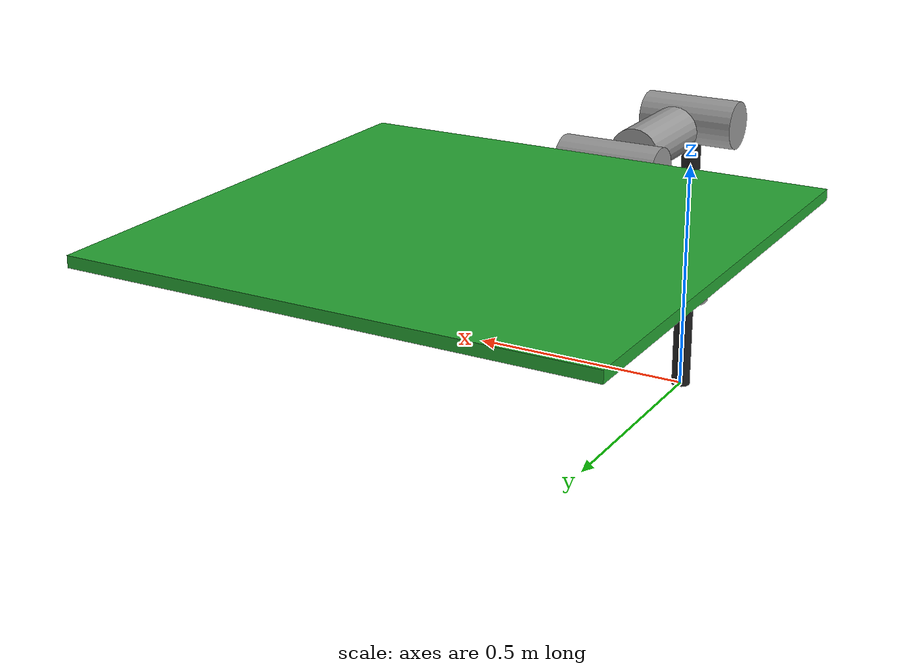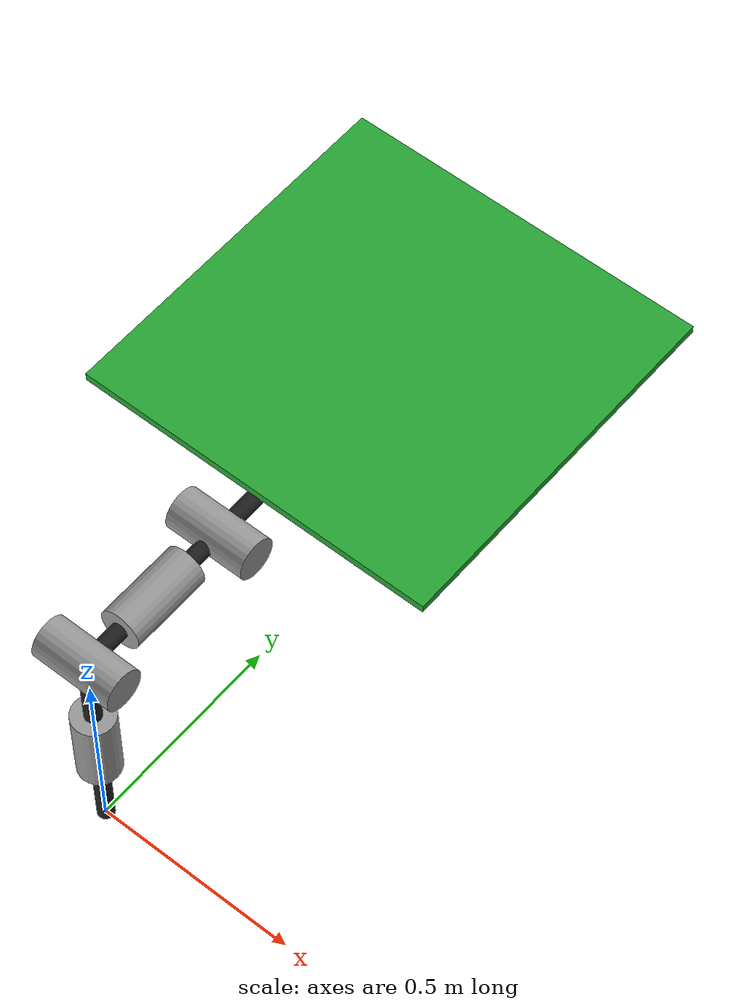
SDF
<sdf version='1.7'>
  <model name='sevenbot'>
    <joint name='attach-motor1' type='fixed'>
      <pose relative_to='__model__'>0 0 0 0 -0 0</pose>
      <parent>world</parent>
      <child>motor1</child>
    </joint>
    <link name='motor1'>
      <pose relative_to='attach-motor1'>0 0 0 0 -0 0</pose>
      <inertial>
        <pose>0 0 0.3 0 -0 0</pose>
        <mass>2</mass>
        <inertia>
          <ixx>0.007917</ixx>
          <ixy>0</ixy>
          <ixz>0</ixz>
          <iyy>0.007917</iyy>
          <iyz>0</iyz>
          <izz>0.0025</izz>
        </inertia>
      </inertial>
      <visual name='motor1_visual'>
        <pose>0 0 0.3 0 -0 0</pose>
        <geometry>
          <cylinder>
            <length>0.2</length>
            <radius>0.05</radius>
          </cylinder>
        </geometry>
        <material>
          <script>
            <name>Gazebo/Gray</name>
            <uri>file://media/materials/scripts/gazebo.material</uri>
          </script>
        </material>
      </visual>
      <gravity>1</gravity>
      <velocity_decay/>
    </link>
    <joint name='attach-mount1' type='fixed'>
      <pose relative_to='__model__'>0 0 0 0 -0 0</pose>
      <parent>world</parent>
      <child>mount1</child>
    </joint>
    <link name='mount1'>
      <pose relative_to='attach-mount1'>0 0 0 0 -0 0</pose>
      <inertial>
        <pose>0 0 0.1 0 -0 0</pose>
        <mass>0.2</mass>
        <inertia>
          <ixx>0.000687</ixx>
          <ixy>0</ixy>
          <ixz>0</ixz>
          <iyy>0.000687</iyy>
          <iyz>0</iyz>
          <izz>4e-05</izz>
        </inertia>
      </inertial>
      <visual name='mount1_visual'>
        <pose>0 0 0.1 0 -0 0</pose>
        <geometry>
          <cylinder>
            <length>0.2</length>
            <radius>0.02</radius>
          </cylinder>
        </geometry>
        <material>
          <script>
            <name>Gazebo/Black</name>
            <uri>file://media/materials/scripts/gazebo.material</uri>
          </script>
        </material>
      </visual>
      <gravity>1</gravity>
      <velocity_decay/>
    </link>
    <joint name='theta1' type='revolute'>
      <pose relative_to='__model__'>0 0 0.6 0 -0 0</pose>
      <parent>world</parent>
      <child>link1</child>
      <axis>
        <xyz>0 0 1</xyz>
        <limit>
          <lower>-1e+16</lower>
          <upper>1e+16</upper>
        </limit>
        <dynamics>
          <damping>0.5</damping>
          <friction>0</friction>
          <spring_reference>0</spring_reference>
          <spring_stiffness>0</spring_stiffness>
        </dynamics>
      </axis>
    </joint>
    <link name='link1'>
      <pose relative_to='theta1'>0 0 0 0 -0 0</pose>
      <inertial>
        <pose>0 0 -0.009091 0 -0 0</pose>
        <mass>2.2</mass>
        <inertia>
          <ixx>0.00500518</ixx>
          <ixy>0</ixy>
          <ixz>-3.31696e-19</ixz>
          <iyy>0.0104222</iyy>
          <iyz>0</iyz>
          <izz>0.007957</izz>
        </inertia>
      </inertial>
      <visual name='link1_fixed_joint_lump__motor2_visual'>
        <pose>0 0 0 0 1.5708 0</pose>
        <geometry>
          <cylinder>
            <length>0.2</length>
            <radius>0.05</radius>
          </cylinder>
        </geometry>
        <material>
          <script>
            <name>Gazebo/Gray</name>
            <uri>file://media/materials/scripts/gazebo.material</uri>
          </script>
        </material>
      </visual>
      <visual name='link1_fixed_joint_lump__mount2_visual_1'>
        <pose>0 0 -0.1 0 -0 0</pose>
        <geometry>
          <cylinder>
            <length>0.2</length>
            <radius>0.02</radius>
          </cylinder>
        </geometry>
        <material>
          <script>
            <name>Gazebo/Black</name>
            <uri>file://media/materials/scripts/gazebo.material</uri>
          </script>
        </material>
      </visual>
      <velocity_decay/>
      <gravity>1</gravity>
      <velocity_decay/>
    </link>
    <joint name='theta2' type='revolute'>
      <pose relative_to='link1'>0 0 0 0 -0 0</pose>
      <parent>link1</parent>
      <child>link2</child>
      <axis>
        <xyz>1 0 0</xyz>
        <limit>
          <lower>-1e+16</lower>
          <upper>1e+16</upper>
        </limit>
        <dynamics>
          <damping>1</damping>
          <friction>0</friction>
          <spring_reference>0</spring_reference>
          <spring_stiffness>0</spring_stiffness>
        </dynamics>
      </axis>
    </joint>
    <link name='link2'>
      <pose relative_to='theta2'>0 0 0 0 -0 0</pose>
      <inertial>
        <pose>0 0.190909 0 0 -0 0</pose>
        <mass>2.2</mass>
        <inertia>
          <ixx>0.0104222</ixx>
          <ixy>0</ixy>
          <ixz>0</ixz>
          <iyy>0.00254</iyy>
          <iyz>-2.22743e-08</iyz>
          <izz>0.0104222</izz>
        </inertia>
      </inertial>
      <visual name='link2_fixed_joint_lump__motor3_visual'>
        <pose>0 0.2 0 1.5708 -0 0</pose>
        <geometry>
          <cylinder>
            <length>0.2</length>
            <radius>0.05</radius>
          </cylinder>
        </geometry>
        <material>
          <script>
            <name>Gazebo/Gray</name>
            <uri>file://media/materials/scripts/gazebo.material</uri>
          </script>
        </material>
      </visual>
      <visual name='link2_fixed_joint_lump__mount3_visual_1'>
        <pose>0 0.1 0 1.5708 -0 0</pose>
        <geometry>
          <cylinder>
            <length>0.2</length>
            <radius>0.02</radius>
          </cylinder>
        </geometry>
        <material>
          <script>
            <name>Gazebo/Black</name>
            <uri>file://media/materials/scripts/gazebo.material</uri>
          </script>
        </material>
      </visual>
      <velocity_decay/>
      <gravity>1</gravity>
      <velocity_decay/>
    </link>
    <joint name='theta3' type='revolute'>
      <pose relative_to='link2'>0 0.4 0 0 -0 0</pose>
      <parent>link2</parent>
      <child>link3</child>
      <axis>
        <xyz>0 1 0</xyz>
        <limit>
          <lower>-1e+16</lower>
          <upper>1e+16</upper>
        </limit>
        <dynamics>
          <damping>0.05</damping>
          <friction>0</friction>
          <spring_reference>0</spring_reference>
          <spring_stiffness>0</spring_stiffness>
        </dynamics>
      </axis>
    </joint>
    <link name='link3'>
      <pose relative_to='theta3'>0 0 0 0 -0 0</pose>
      <inertial>
        <pose>0 -0.009091 0 0 -0 0</pose>
        <mass>2.2</mass>
        <inertia>
          <ixx>0.00500518</ixx>
          <ixy>0</ixy>
          <ixz>-3.31696e-19</ixz>
          <iyy>0.007957</iyy>
          <iyz>-2.37656e-09</iyz>
          <izz>0.0104222</izz>
        </inertia>
      </inertial>
      <visual name='link3_fixed_joint_lump__motor4_visual'>
        <pose>0 0 0 0 1.5708 0</pose>
        <geometry>
          <cylinder>
            <length>0.2</length>
            <radius>0.05</radius>
          </cylinder>
        </geometry>
        <material>
          <script>
            <name>Gazebo/Gray</name>
            <uri>file://media/materials/scripts/gazebo.material</uri>
          </script>
        </material>
      </visual>
      <visual name='link3_fixed_joint_lump__mount4_visual_1'>
        <pose>0 -0.1 0 1.5708 -0 0</pose>
        <geometry>
          <cylinder>
            <length>0.2</length>
            <radius>0.02</radius>
          </cylinder>
        </geometry>
        <material>
          <script>
            <name>Gazebo/Black</name>
            <uri>file://media/materials/scripts/gazebo.material</uri>
          </script>
        </material>
      </visual>
      <velocity_decay/>
      <gravity>1</gravity>
      <velocity_decay/>
    </link>
    <joint name='theta4' type='revolute'>
      <pose relative_to='link3'>0 0 0 0 -0 0</pose>
      <parent>link3</parent>
      <child>link4</child>
      <axis>
        <xyz>1 0 0</xyz>
        <limit>
          <lower>-1e+16</lower>
          <upper>1e+16</upper>
        </limit>
        <dynamics>
          <damping>0.1</damping>
          <friction>0</friction>
          <spring_reference>0</spring_reference>
          <spring_stiffness>0</spring_stiffness>
        </dynamics>
      </axis>
    </joint>
    <link name='link4'>
      <pose relative_to='theta4'>0 0 0 0 -0 0</pose>
      <inertial>
        <pose>0 0.183333 0 0 -0 0</pose>
        <mass>1.2</mass>
        <inertia>
          <ixx>0.00334367</ixx>
          <ixy>0</ixy>
          <ixz>0</ixz>
          <iyy>0.000353</iyy>
          <iyz>-4.86332e-09</iyz>
          <izz>0.00334367</izz>
        </inertia>
      </inertial>
      <visual name='link4_fixed_joint_lump__motor5_visual'>
        <pose>0 0.2 0 1.5708 -0 0</pose>
        <geometry>
          <cylinder>
            <length>0.1</length>
            <radius>0.025</radius>
          </cylinder>
        </geometry>
        <material>
          <script>
            <name>Gazebo/Gray</name>
            <uri>file://media/materials/scripts/gazebo.material</uri>
          </script>
        </material>
      </visual>
      <visual name='link4_fixed_joint_lump__mount5_visual_1'>
        <pose>0 0.1 0 1.5708 -0 0</pose>
        <geometry>
          <cylinder>
            <length>0.2</length>
            <radius>0.02</radius>
          </cylinder>
        </geometry>
        <material>
          <script>
            <name>Gazebo/Black</name>
            <uri>file://media/materials/scripts/gazebo.material</uri>
          </script>
        </material>
      </visual>
      <velocity_decay/>
      <gravity>1</gravity>
      <velocity_decay/>
    </link>
    <joint name='theta5' type='revolute'>
      <pose relative_to='link4'>0 0.4 0 0 -0 0</pose>
      <parent>link4</parent>
      <child>link5</child>
      <axis>
        <xyz>0 1 0</xyz>
        <limit>
          <lower>-1e+16</lower>
          <upper>1e+16</upper>
        </limit>
        <dynamics>
          <damping>0.02</damping>
          <friction>0</friction>
          <spring_reference>0</spring_reference>
          <spring_stiffness>0</spring_stiffness>
        </dynamics>
      </axis>
    </joint>
    <link name='link5'>
      <pose relative_to='theta5'>0 0 0 0 -0 0</pose>
      <inertial>
        <pose>0 -0.009091 0 0 -0 0</pose>
        <mass>1.1</mass>
        <inertia>
          <ixx>0.00223509</ixx>
          <ixy>0</ixy>
          <ixz>0</ixz>
          <iyy>0.000995</iyy>
          <iyz>-1.21583e-09</iyz>
          <izz>0.00155809</izz>
        </inertia>
      </inertial>
      <visual name='link5_fixed_joint_lump__motor6_visual'>
        <pose>0 0 0 0 -0 0</pose>
        <geometry>
          <cylinder>
            <length>0.1</length>
            <radius>0.025</radius>
          </cylinder>
        </geometry>
        <material>
          <script>
            <name>Gazebo/Gray</name>
            <uri>file://media/materials/scripts/gazebo.material</uri>
          </script>
        </material>
      </visual>
      <visual name='link5_fixed_joint_lump__mount6_visual_1'>
        <pose>0 -0.1 0 1.5708 -0 0</pose>
        <geometry>
          <cylinder>
            <length>0.2</length>
            <radius>0.01</radius>
          </cylinder>
        </geometry>
        <material>
          <script>
            <name>Gazebo/Black</name>
            <uri>file://media/materials/scripts/gazebo.material</uri>
          </script>
        </material>
      </visual>
      <velocity_decay/>
      <gravity>1</gravity>
      <velocity_decay/>
    </link>
    <joint name='theta6' type='revolute'>
      <pose relative_to='link5'>0 0 0 0 -0 0</pose>
      <parent>link5</parent>
      <child>link6</child>
      <axis>
        <xyz>0 0 1</xyz>
        <limit>
          <lower>-1e+16</lower>
          <upper>1e+16</upper>
        </limit>
        <dynamics>
          <damping>0.02</damping>
          <friction>0</friction>
          <spring_reference>0</spring_reference>
          <spring_stiffness>0</spring_stiffness>
        </dynamics>
      </axis>
    </joint>
    <link name='link6'>
      <pose relative_to='theta6'>0 0 0 0 -0 0</pose>
      <inertial>
        <pose>0 0 0 0 -0 0</pose>
        <mass>1</mass>
        <inertia>
          <ixx>0.000313</ixx>
          <ixy>0</ixy>
          <ixz>-4.14543e-20</ixz>
          <iyy>0.00099</iyy>
          <iyz>0</iyz>
          <izz>0.00099</izz>
        </inertia>
      </inertial>
      <visual name='link6_fixed_joint_lump__motor7_visual'>
        <pose>0 0 0 0 1.5708 0</pose>
        <geometry>
          <cylinder>
            <length>0.1</length>
            <radius>0.025</radius>
          </cylinder>
        </geometry>
        <material>
          <script>
            <name>Gazebo/Gray</name>
            <uri>file://media/materials/scripts/gazebo.material</uri>
          </script>
        </material>
      </visual>
      <gravity>1</gravity>
      <velocity_decay/>
    </link>
    <joint name='theta7' type='revolute'>
      <pose relative_to='link6'>0 0 0 0 -0 0</pose>
      <parent>link6</parent>
      <child>link7</child>
      <axis>
        <xyz>1 0 0</xyz>
        <limit>
          <lower>-1e+16</lower>
          <upper>1e+16</upper>
        </limit>
        <dynamics>
          <damping>0.02</damping>
          <friction>0</friction>
          <spring_reference>0</spring_reference>
          <spring_stiffness>0</spring_stiffness>
        </dynamics>
      </axis>
    </joint>
    <link name='link7'>
      <pose relative_to='theta7'>0 0 0 0 -0 0</pose>
      <inertial>
        <pose>-0 0.146136 0 0 -0 0</pose>
        <mass>2.2</mass>
        <inertia>
          <ixx>0.00235816</ixx>
          <ixy>-6.33749e-20</ixy>
          <ixz>-2.44929e-21</ixz>
          <iyy>0.001966</iyy>
          <iyz>-2.93856e-10</iyz>
          <izz>0.00264816</izz>
        </inertia>
      </inertial>
      <collision name='link7_fixed_joint_lump__cube_collision'>
        <pose>0 0.15 0 1.5708 -0 -3.14159</pose>
        <geometry>
          <box>
            <size>0.9 0.1 0.9</size>
          </box>
        </geometry>
        <surface>
          <bounce>
            <restitution_coefficient>1</restitution_coefficient>
            <threshold>0.01</threshold>
          </bounce>
          <contact>
            <ode>
              <max_vel>10</max_vel>
            </ode>
          </contact>
          <friction>
            <ode/>
          </friction>
        </surface>
      </collision>
      <visual name='link7_fixed_joint_lump__handbase_visual'>
        <pose>0 0.05 0 1.5708 -0 0</pose>
        <geometry>
          <cylinder>
            <length>0.1</length>
            <radius>0.01</radius>
          </cylinder>
        </geometry>
        <material>
          <script>
            <name>Gazebo/Black</name>
            <uri>file://media/materials/scripts/gazebo.material</uri>
          </script>
        </material>
      </visual>
      <visual name='link7_fixed_joint_lump__leftfinger_visual_1'>
        <pose>-0.05 0.14 0 1.5708 -0 0</pose>
        <geometry>
          <cylinder>
            <length>0.08</length>
            <radius>0.01</radius>
          </cylinder>
        </geometry>
        <material>
          <script>
            <name>Gazebo/Black</name>
            <uri>file://media/materials/scripts/gazebo.material</uri>
          </script>
        </material>
      </visual>
      <visual name='link7_fixed_joint_lump__palm_visual_2'>
        <pose>0 0.1 0 0 1.5708 0</pose>
        <geometry>
          <cylinder>
            <length>0.1</length>
            <radius>0.01</radius>
          </cylinder>
        </geometry>
        <material>
          <script>
            <name>Gazebo/Black</name>
            <uri>file://media/materials/scripts/gazebo.material</uri>
          </script>
        </material>
      </visual>
      <visual name='link7_fixed_joint_lump__rightfinger_visual_3'>
        <pose>0.05 0.14 0 1.5708 -0 0</pose>
        <geometry>
          <cylinder>
            <length>0.08</length>
            <radius>0.01</radius>
          </cylinder>
        </geometry>
        <material>
          <script>
            <name>Gazebo/Black</name>
            <uri>file://media/materials/scripts/gazebo.material</uri>
          </script>
        </material>
      </visual>
      <visual name='link7_fixed_joint_lump__cube-back_visual_4'>
        <pose>0 0.11 0 1.5708 -0 -3.14159</pose>
        <geometry>
          <box>
            <size>0.09 0.09 0.0202</size>
          </box>
        </geometry>
        <material>
          <script>
            <name>Gazebo/White</name>
            <uri>file://media/materials/scripts/gazebo.material</uri>
          </script>
        </material>
      </visual>
      <visual name='link7_fixed_joint_lump__cube-down_visual_5'>
        <pose>0 0.15 -0.04 1.5708 -0 -3.14159</pose>
        <geometry>
          <box>
            <size>0.09 0.0202 0.09</size>
          </box>
        </geometry>
        <material>
          <script>
            <name>Gazebo/Yellow</name>
            <uri>file://media/materials/scripts/gazebo.material</uri>
          </script>
        </material>
      </visual>
      <visual name='link7_fixed_joint_lump__cube-front_visual_6'>
        <pose>-0 0.19 -0 1.5708 -0 -3.14159</pose>
        <geometry>
          <box>
            <size>0.09 0.09 0.0202</size>
          </box>
        </geometry>
        <material>
          <script>
            <name>Gazebo/Blue</name>
            <uri>file://media/materials/scripts/gazebo.material</uri>
          </script>
        </material>
      </visual>
      <visual name='link7_fixed_joint_lump__cube-left_visual_7'>
        <pose>-0.04 0.15 0 1.5708 -0 -3.14159</pose>
        <geometry>
          <box>
            <size>0.0202 0.09 0.09</size>
          </box>
        </geometry>
        <material>
          <script>
            <name>Gazebo/Red</name>
            <uri>file://media/materials/scripts/gazebo.material</uri>
          </script>
        </material>
      </visual>
      <visual name='link7_fixed_joint_lump__cube-right_visual_8'>
        <pose>0.04 0.15 0 1.5708 -0 -3.14159</pose>
        <geometry>
          <box>
            <size>0.0202 0.09 0.09</size>
          </box>
        </geometry>
        <material>
          <script>
            <name>Gazebo/Orange</name>
            <uri>file://media/materials/scripts/gazebo.material</uri>
          </script>
        </material>
      </visual>
      <visual name='link7_fixed_joint_lump__cube-up_visual_9'>
        <pose>-0 0.15 0.04 1.5708 -0 -3.14159</pose>
        <geometry>
          <box>
            <size>0.9 0.0202 0.9</size>
          </box>
        </geometry>
        <material>
          <script>
            <name>Gazebo/Green</name>
            <uri>file://media/materials/scripts/gazebo.material</uri>
          </script>
        </material>
      </visual>
      <velocity_decay/>
      <velocity_decay/>
      <velocity_decay/>
      <velocity_decay/>
      <velocity_decay/>
      <velocity_decay/>
      <velocity_decay/>
      <velocity_decay/>
      <velocity_decay/>
      <velocity_decay/>
      <gravity>1</gravity>
      <velocity_decay/>
    </link>
    <static>0</static>
    <plugin name='gazebo_ros_control' filename='libgazebo_ros_control.so'>
      <robotNamespace>/sevenbot</robotNamespace>
      <robotSimType>gazebo_ros_control/DefaultRobotHWSim</robotSimType>
    </plugin>
    <transmission name='trans1'>
      <type>transmission_interface/SimpleTransmission</type>
      <joint name='theta1'>
        <hardwareInterface>hardware_interface/EffortJointInterface</hardwareInterface>
      </joint>
      <actuator name='motor1'>
        <mechanicalReduction>1</mechanicalReduction>
        <hardwareInterface>hardware_interface/EffortJointInterface</hardwareInterface>
      </actuator>
    </transmission>
  </model>
</sdf>
